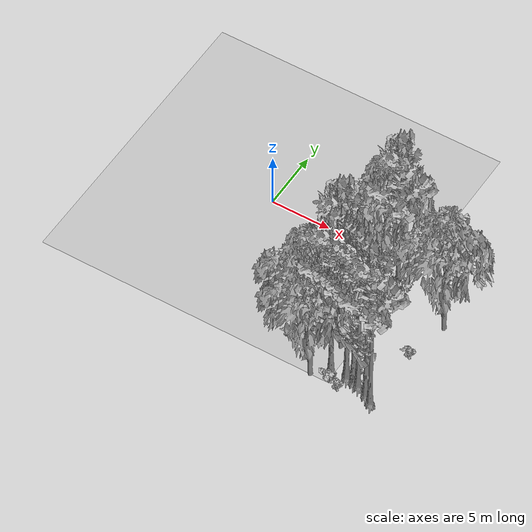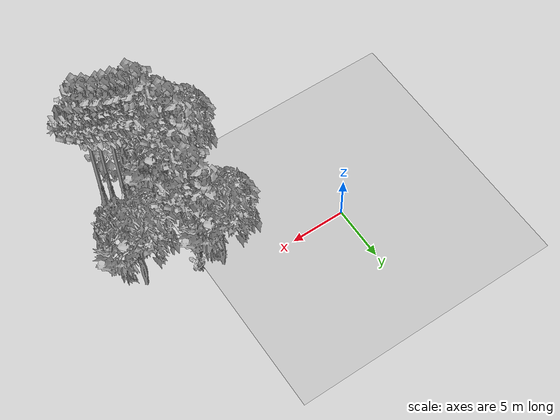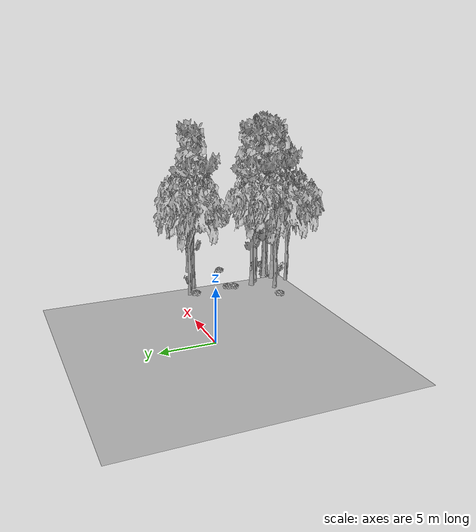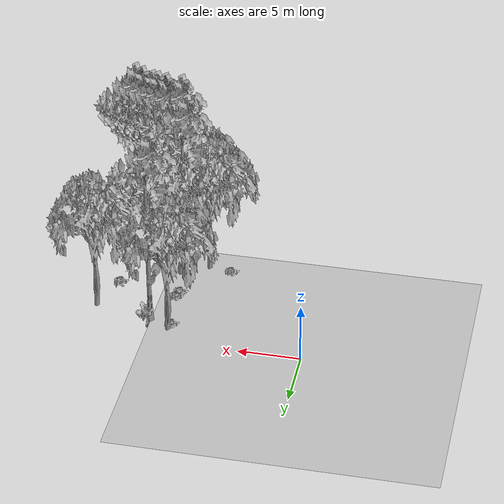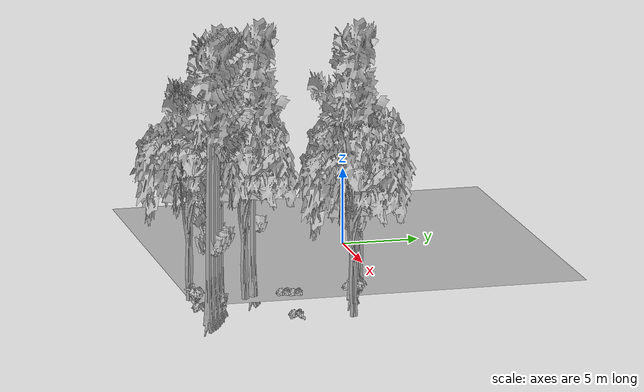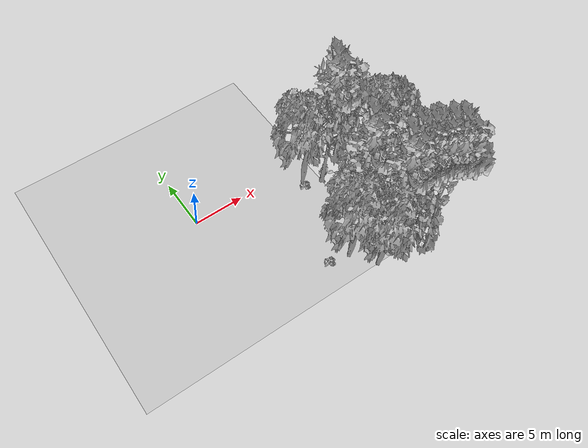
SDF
<sdf version="1.7">
 <world name="default">
  <model name="ground_plane">
   <static>1</static>
   <link name="link">
    <collision name="collision">
     <pose>-50 0 0 0 -0 0</pose>
     <geometry><plane><normal>0 0 1</normal><size>80 80</size></plane></geometry>
     <surface><contact><ode><min_depth>0.01</min_depth><max_vel>0</max_vel></ode></contact></surface>
    </collision>
    <visual name="grass">
     <cast_shadows>0</cast_shadows>
     <geometry>
      <mesh>
       <scale>0.46714285714285714 0.46714285714285714 0.1</scale>
       <uri>file://grass_plane/meshes/grass_plane.dae</uri>
      </mesh>
     </geometry>
    </visual>
   </link>
  </model>
  <model name="Tree 9">
   <static>1</static>
   <pose>14.268718768158244 -11.616131461312893 0 1.57079 -0 0</pose>
   <link name="link">
    <collision name="collision">
     <geometry><mesh><scale>3.5 5 3.5</scale><uri>model://tree_9/meshes/tree_9.obj</uri></mesh></geometry>
    </collision>
    <visual name="visual">
     <geometry><mesh><scale>3.5 5 3.5</scale><uri>model://tree_9/meshes/tree_9.obj</uri></mesh></geometry>
    </visual>
   </link>
  </model>
  <model name="Tree 13">
   <static>1</static>
   <pose>13.4185361888932 -11.179486711648174 0 1.57079 -0 0</pose>
   <link name="link">
    <collision name="collision">
     <geometry><mesh><scale>3.5 5 3.5</scale><uri>model://tree_9/meshes/tree_9.obj</uri></mesh></geometry>
    </collision>
    <visual name="visual">
     <geometry><mesh><scale>3.5 5 3.5</scale><uri>model://tree_9/meshes/tree_9.obj</uri></mesh></geometry>
    </visual>
   </link>
  </model>
  <model name="Tree 68">
   <static>1</static>
   <pose>15.641412620876991 -12.151843271946213 0 1.57079 -0 0</pose>
   <link name="link">
    <collision name="collision">
     <geometry><mesh><scale>3.5 5 3.5</scale><uri>model://tree_9/meshes/tree_9.obj</uri></mesh></geometry>
    </collision>
    <visual name="visual">
     <geometry><mesh><scale>3.5 5 3.5</scale><uri>model://tree_9/meshes/tree_9.obj</uri></mesh></geometry>
    </visual>
   </link>
  </model>
  <model name="Tree 74">
   <static>1</static>
   <pose>12.272659585982716 -11.4944364660046 0 1.57079 -0 0</pose>
   <link name="link">
    <collision name="collision">
     <geometry><mesh><scale>3.5 5 3.5</scale><uri>model://tree_9/meshes/tree_9.obj</uri></mesh></geometry>
    </collision>
    <visual name="visual">
     <geometry><mesh><scale>3.5 5 3.5</scale><uri>model://tree_9/meshes/tree_9.obj</uri></mesh></geometry>
    </visual>
   </link>
  </model>
  <model name="Tree 193">
   <static>1</static>
   <pose>11.643199718619343 -9.256995801639523 0 1.57079 -0 0</pose>
   <link name="link">
    <collision name="collision">
     <geometry><mesh><scale>3.5 5 3.5</scale><uri>model://tree_2/meshes/tree_2.obj</uri></mesh></geometry>
    </collision>
    <visual name="visual">
     <geometry><mesh><scale>3.5 5 3.5</scale><uri>model://tree_2/meshes/tree_2.obj</uri></mesh></geometry>
    </visual>
   </link>
  </model>
  <model name="Tree 206">
   <static>1</static>
   <pose>9.481385662919799 -10.51914282345355 0 1.57079 -0 0</pose>
   <link name="link">
    <collision name="collision">
     <geometry><mesh><scale>3.5 5 3.5</scale><uri>model://tree_2/meshes/tree_2.obj</uri></mesh></geometry>
    </collision>
    <visual name="visual">
     <geometry><mesh><scale>3.5 5 3.5</scale><uri>model://tree_2/meshes/tree_2.obj</uri></mesh></geometry>
    </visual>
   </link>
  </model>
  <model name="Tree 244">
   <static>1</static>
   <pose>11.178341876977889 -8.60514146228138 0 1.57079 -0 0</pose>
   <link name="link">
    <collision name="collision">
     <geometry><mesh><scale>3.5 5 3.5</scale><uri>model://tree_9/meshes/tree_9.obj</uri></mesh></geometry>
    </collision>
    <visual name="visual">
     <geometry><mesh><scale>3.5 5 3.5</scale><uri>model://tree_9/meshes/tree_9.obj</uri></mesh></geometry>
    </visual>
   </link>
  </model>
  <model name="Tree 336">
   <static>1</static>
   <pose>17.219088530070202 -3.7351012546512834 0 1.57079 -0 0</pose>
   <link name="link">
    <collision name="collision">
     <geometry><mesh><scale>3.5 5 3.5</scale><uri>model://tree_2/meshes/tree_2.obj</uri></mesh></geometry>
    </collision>
    <visual name="visual">
     <geometry><mesh><scale>3.5 5 3.5</scale><uri>model://tree_2/meshes/tree_2.obj</uri></mesh></geometry>
    </visual>
   </link>
  </model>
  <model name="Tree 407">
   <static>1</static>
   <pose>13.584457157734178 -11.473965796741858 0 1.57079 -0 0</pose>
   <link name="link">
    <collision name="collision">
     <geometry><mesh><scale>3.5 5 3.5</scale><uri>model://tree_9/meshes/tree_9.obj</uri></mesh></geometry>
    </collision>
    <visual name="visual">
     <geometry><mesh><scale>3.5 5 3.5</scale><uri>model://tree_9/meshes/tree_9.obj</uri></mesh></geometry>
    </visual>
   </link>
  </model>
  <model name="Tree 439">
   <static>1</static>
   <pose>14.712060511098393 -11.696982503033126 0 1.57079 -0 0</pose>
   <link name="link">
    <collision name="collision">
     <geometry><mesh><scale>3.5 5 3.5</scale><uri>model://tree_9/meshes/tree_9.obj</uri></mesh></geometry>
    </collision>
    <visual name="visual">
     <geometry><mesh><scale>3.5 5 3.5</scale><uri>model://tree_9/meshes/tree_9.obj</uri></mesh></geometry>
    </visual>
   </link>
  </model>
  <model name="Tree 499">
   <static>1</static>
   <pose>11.063834920044584 -12.631782872479658 0 1.57079 -0 0</pose>
   <link name="link">
    <collision name="collision">
     <geometry><mesh><scale>3.5 5 3.5</scale><uri>model://tree_2/meshes/tree_2.obj</uri></mesh></geometry>
    </collision>
    <visual name="visual">
     <geometry><mesh><scale>3.5 5 3.5</scale><uri>model://tree_2/meshes/tree_2.obj</uri></mesh></geometry>
    </visual>
   </link>
  </model>
  <model name="Tree 504">
   <static>1</static>
   <pose>16.297167451869782 -12.585909642300734 0 1.57079 -0 0</pose>
   <link name="link">
    <collision name="collision">
     <geometry><mesh><scale>3.5 5 3.5</scale><uri>model://tree_9/meshes/tree_9.obj</uri></mesh></geometry>
    </collision>
    <visual name="visual">
     <geometry><mesh><scale>3.5 5 3.5</scale><uri>model://tree_9/meshes/tree_9.obj</uri></mesh></geometry>
    </visual>
   </link>
  </model>
  <model name="Tree 618">
   <static>1</static>
   <pose>10.906665452886337 -1.7315982086439874 0 1.57079 -0 0</pose>
   <link name="link">
    <collision name="collision">
     <geometry><mesh><scale>3.5 5 3.5</scale><uri>model://tree_2/meshes/tree_2.obj</uri></mesh></geometry>
    </collision>
    <visual name="visual">
     <geometry><mesh><scale>3.5 5 3.5</scale><uri>model://tree_2/meshes/tree_2.obj</uri></mesh></geometry>
    </visual>
   </link>
  </model>
  <model name="Tree 639">
   <static>1</static>
   <pose>12.647033252261956 -2.6362101239918374 0 1.57079 -0 0</pose>
   <link name="link">
    <collision name="collision">
     <geometry><mesh><scale>3.5 5 3.5</scale><uri>model://tree_9/meshes/tree_9.obj</uri></mesh></geometry>
    </collision>
    <visual name="visual">
     <geometry><mesh><scale>3.5 5 3.5</scale><uri>model://tree_9/meshes/tree_9.obj</uri></mesh></geometry>
    </visual>
   </link>
  </model>
  <model name="Bush 68">
   <static>1</static>
   <pose>12.71538420560178 -12.581829149889572 0 1.57079 -0 0</pose>
   <link name="link">
    <collision name="collision">
     <geometry><mesh><scale>2 2 2</scale><uri>model://bush_0/meshes/bush_0.obj</uri></mesh></geometry>
     <surface><contact><collide_without_contact>false</collide_without_contact></contact></surface>
    </collision>
    <visual name="visual">
     <geometry><mesh><scale>2 2 2</scale><uri>model://bush_0/meshes/bush_0.obj</uri></mesh></geometry>
    </visual>
   </link>
  </model>
  <model name="Bush 127">
   <static>1</static>
   <pose>13.147351382562213 -2.382608652934273 0 1.57079 -0 0</pose>
   <link name="link">
    <collision name="collision">
     <geometry><mesh><scale>2 2 2</scale><uri>model://bush_0/meshes/bush_0.obj</uri></mesh></geometry>
     <surface><contact><collide_without_contact>false</collide_without_contact></contact></surface>
    </collision>
    <visual name="visual">
     <geometry><mesh><scale>2 2 2</scale><uri>model://bush_0/meshes/bush_0.obj</uri></mesh></geometry>
    </visual>
   </link>
  </model>
  <model name="Bush 133">
   <static>1</static>
   <pose>10.856255262592008 -2.338825484615114 0 1.57079 -0 0</pose>
   <link name="link">
    <collision name="collision">
     <geometry><mesh><scale>2 2 2</scale><uri>model://bush_2/meshes/bush_2.obj</uri></mesh></geometry>
     <surface><contact><collide_without_contact>false</collide_without_contact></contact></surface>
    </collision>
    <visual name="visual">
     <geometry><mesh><scale>2 2 2</scale><uri>model://bush_2/meshes/bush_2.obj</uri></mesh></geometry>
    </visual>
   </link>
  </model>
  <model name="Bush 195">
   <static>1</static>
   <pose>11.17332601050228 -6.655188527883169 0 1.57079 -0 0</pose>
   <link name="link">
    <collision name="collision">
     <geometry><mesh><scale>2 2 2</scale><uri>model://bush_2/meshes/bush_2.obj</uri></mesh></geometry>
     <surface><contact><collide_without_contact>false</collide_without_contact></contact></surface>
    </collision>
    <visual name="visual">
     <geometry><mesh><scale>2 2 2</scale><uri>model://bush_2/meshes/bush_2.obj</uri></mesh></geometry>
    </visual>
   </link>
  </model>
  <model name="Bush 257">
   <static>1</static>
   <pose>7.677816192511088 -10.145402299306213 0 1.57079 -0 0</pose>
   <link name="link">
    <collision name="collision">
     <geometry><mesh><scale>2 2 2</scale><uri>model://bush_2/meshes/bush_2.obj</uri></mesh></geometry>
     <surface><contact><collide_without_contact>false</collide_without_contact></contact></surface>
    </collision>
    <visual name="visual">
     <geometry><mesh><scale>2 2 2</scale><uri>model://bush_2/meshes/bush_2.obj</uri></mesh></geometry>
    </visual>
   </link>
  </model>
  <model name="Bush 399">
   <static>1</static>
   <pose>16.232436365682233 -7.071500679858104 0 1.57079 -0 0</pose>
   <link name="link">
    <collision name="collision">
     <geometry><mesh><scale>2 2 2</scale><uri>model://bush_2/meshes/bush_2.obj</uri></mesh></geometry>
     <surface><contact><collide_without_contact>false</collide_without_contact></contact></surface>
    </collision>
    <visual name="visual">
     <geometry><mesh><scale>2 2 2</scale><uri>model://bush_2/meshes/bush_2.obj</uri></mesh></geometry>
    </visual>
   </link>
  </model>
  <model name="Bush 442">
   <static>1</static>
   <pose>14.421300530318405 -11.565039098958287 0 1.57079 -0 0</pose>
   <link name="link">
    <collision name="collision">
     <geometry><mesh><scale>2 2 2</scale><uri>model://bush_4/meshes/bush_4.obj</uri></mesh></geometry>
     <surface><contact><collide_without_contact>false</collide_without_contact></contact></surface>
    </collision>
    <visual name="visual">
     <geometry><mesh><scale>2 2 2</scale><uri>model://bush_4/meshes/bush_4.obj</uri></mesh></geometry>
    </visual>
   </link>
  </model>
  <model name="Bush 503">
   <static>1</static>
   <pose>11.369601547791717 -5.944431766372993 0 1.57079 -0 0</pose>
   <link name="link">
    <collision name="collision">
     <geometry><mesh><scale>2 2 2</scale><uri>model://bush_2/meshes/bush_2.obj</uri></mesh></geometry>
     <surface><contact><collide_without_contact>false</collide_without_contact></contact></surface>
    </collision>
    <visual name="visual">
     <geometry><mesh><scale>2 2 2</scale><uri>model://bush_2/meshes/bush_2.obj</uri></mesh></geometry>
    </visual>
   </link>
  </model>
  <model name="Bush 558">
   <static>1</static>
   <pose>13.282030041808554 -12.469008515493574 0 1.57079 -0 0</pose>
   <link name="link">
    <collision name="collision">
     <geometry><mesh><scale>2 2 2</scale><uri>model://bush_2/meshes/bush_2.obj</uri></mesh></geometry>
     <surface><contact><collide_without_contact>false</collide_without_contact></contact></surface>
    </collision>
    <visual name="visual">
     <geometry><mesh><scale>2 2 2</scale><uri>model://bush_2/meshes/bush_2.obj</uri></mesh></geometry>
    </visual>
   </link>
  </model>
 </world>
</sdf>
